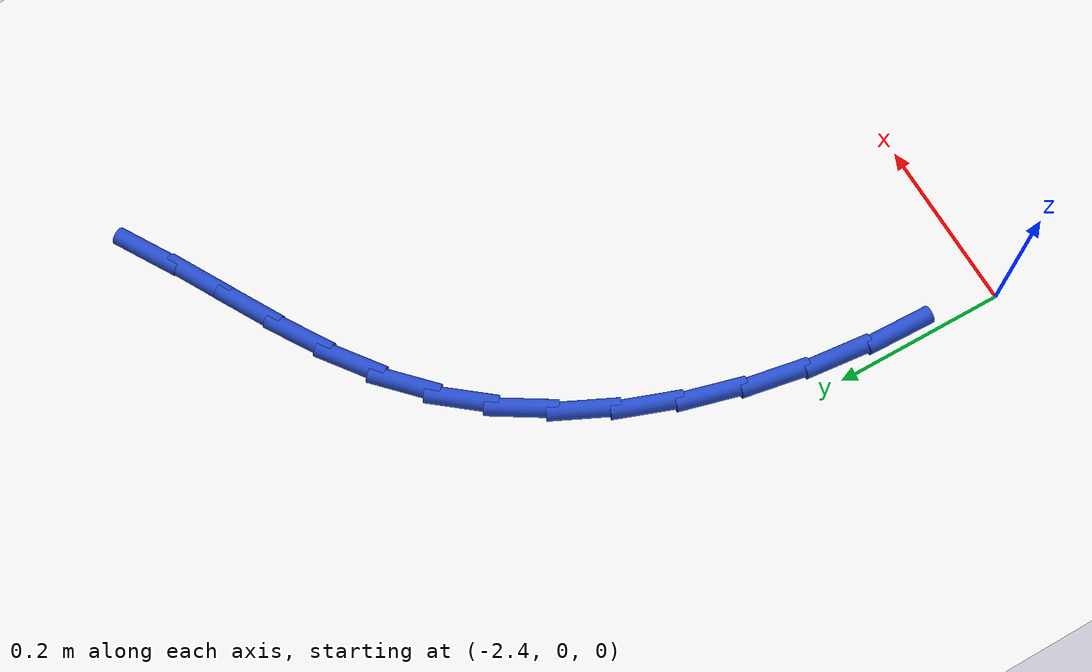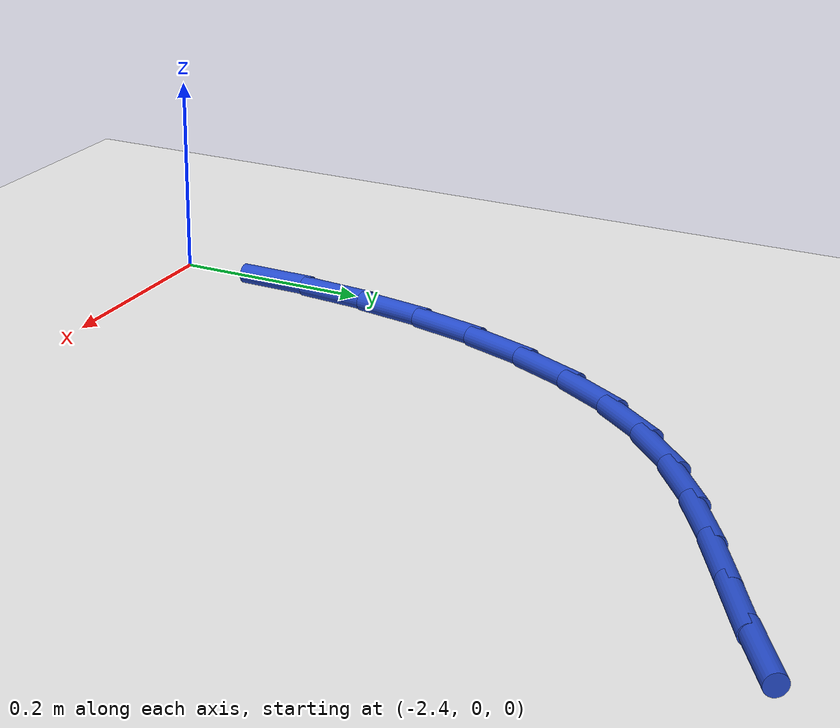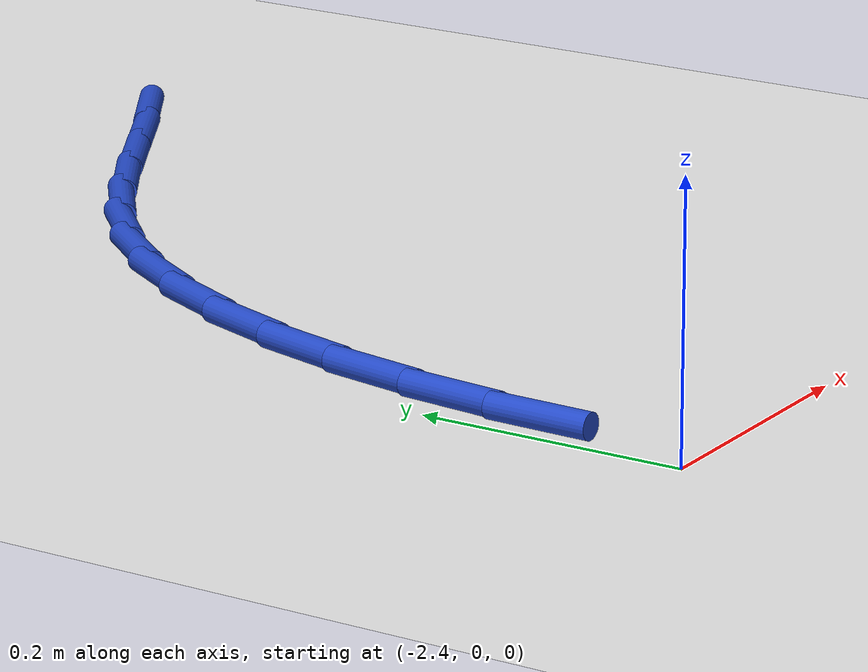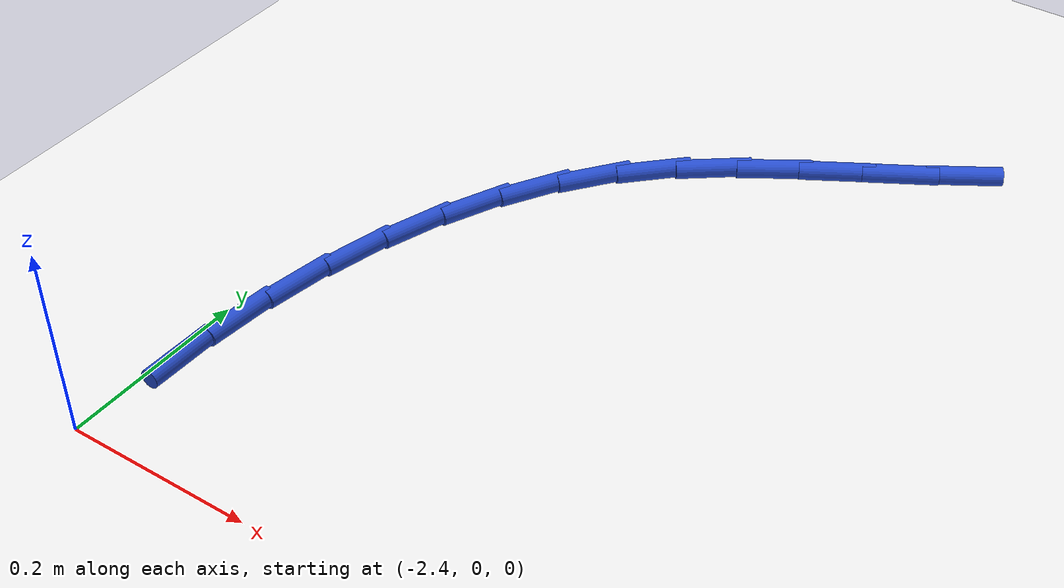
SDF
<sdf version="1.6">
 <world name="default">
  <model name="ground_plane">
   <static>1</static>
   <link name="link">
    <collision name="collision">
     <geometry><plane><normal>0 0 1</normal><size>100 100</size></plane></geometry>
     <surface><friction><ode><mu>100</mu><mu2>50</mu2></ode></friction></surface>
    </collision>
    <visual name="visual">
     <cast_shadows>0</cast_shadows>
     <geometry><plane><normal>0 0 1</normal><size>100 100</size></plane></geometry>
     <material>
      <script><uri>file://media/materials/scripts/gazebo.material</uri><name>Gazebo/WhiteGlow</name></script>
     </material>
    </visual>
   </link>
  </model>
  <model name="line">
   <link name="link_43">
    <pose>-1.9031417020735097 0.7855670885090802 0.01 0 1.57 0.5569310684670024</pose>
    <collision name="collision">
     <geometry><cylinder><radius>0.01</radius><length>0.08</length></cylinder></geometry>
    </collision>
    <visual name="visual">
     <material>
      <script><name>Gazebo/Blue</name><uri>file://media/materials/scripts/gazebo.material</uri></script>
     </material>
     <geometry><cylinder><radius>0.01</radius><length>0.08</length></cylinder></geometry>
    </visual>
   </link>
   <link name="link_44">
    <pose>-1.959454682631666 0.7505019805207742 0.01 0 1.57 0.5257596120730819</pose>
    <collision name="collision">
     <geometry><cylinder><radius>0.01</radius><length>0.08</length></cylinder></geometry>
    </collision>
    <visual name="visual">
     <material>
      <script><name>Gazebo/Blue</name><uri>file://media/materials/scripts/gazebo.material</uri></script>
     </material>
     <geometry><cylinder><radius>0.01</radius><length>0.08</length></cylinder></geometry>
    </visual>
   </link>
   <link name="link_45">
    <pose>-2.016389736166163 0.717466270425667 0.01 0 1.57 0.5312247149732872</pose>
    <collision name="collision">
     <geometry><cylinder><radius>0.01</radius><length>0.08</length></cylinder></geometry>
    </collision>
    <visual name="visual">
     <material>
      <script><name>Gazebo/Blue</name><uri>file://media/materials/scripts/gazebo.material</uri></script>
     </material>
     <geometry><cylinder><radius>0.01</radius><length>0.08</length></cylinder></geometry>
    </visual>
   </link>
   <link name="link_46">
    <pose>-2.072519929858301 0.6844862256214331 0.01 0 1.57 0.5746013298134934</pose>
    <collision name="collision">
     <geometry><cylinder><radius>0.01</radius><length>0.08</length></cylinder></geometry>
    </collision>
    <visual name="visual">
     <material>
      <script><name>Gazebo/Blue</name><uri>file://media/materials/scripts/gazebo.material</uri></script>
     </material>
     <geometry><cylinder><radius>0.01</radius><length>0.08</length></cylinder></geometry>
    </visual>
   </link>
   <link name="link_47">
    <pose>-2.1264183308893836 0.6495881135057482 0.01 0 1.57 0.6574939663490148</pose>
    <collision name="collision">
     <geometry><cylinder><radius>0.01</radius><length>0.08</length></cylinder></geometry>
    </collision>
    <visual name="visual">
     <material>
      <script><name>Gazebo/Blue</name><uri>file://media/materials/scripts/gazebo.material</uri></script>
     </material>
     <geometry><cylinder><radius>0.01</radius><length>0.08</length></cylinder></geometry>
    </visual>
   </link>
   <link name="link_48">
    <pose>-2.1766580064407113 0.6107982014762867 0.01 0 1.57 0.7785643827100246</pose>
    <collision name="collision">
     <geometry><cylinder><radius>0.01</radius><length>0.08</length></cylinder></geometry>
    </collision>
    <visual name="visual">
     <material>
      <script><name>Gazebo/Blue</name><uri>file://media/materials/scripts/gazebo.material</uri></script>
     </material>
     <geometry><cylinder><radius>0.01</radius><length>0.08</length></cylinder></geometry>
    </visual>
   </link>
   <link name="link_49">
    <pose>-2.2218528283493026 0.5662168994601674 0.01 0 1.57 0.910475314383533</pose>
    <collision name="collision">
     <geometry><cylinder><radius>0.01</radius><length>0.08</length></cylinder></geometry>
    </collision>
    <visual name="visual">
     <material>
      <script><name>Gazebo/Blue</name><uri>file://media/materials/scripts/gazebo.material</uri></script>
     </material>
     <geometry><cylinder><radius>0.01</radius><length>0.08</length></cylinder></geometry>
    </visual>
   </link>
   <link name="link_50">
    <pose>-2.2613764083141086 0.5153250734646552 0.01 0 1.57 1.030407609727738</pose>
    <collision name="collision">
     <geometry><cylinder><radius>0.01</radius><length>0.08</length></cylinder></geometry>
    </collision>
    <visual name="visual">
     <material>
      <script><name>Gazebo/Blue</name><uri>file://media/materials/scripts/gazebo.material</uri></script>
     </material>
     <geometry><cylinder><radius>0.01</radius><length>0.08</length></cylinder></geometry>
    </visual>
   </link>
   <link name="link_51">
    <pose>-2.295274337107057 0.45882458321276043 0.01 0 1.57 1.1381381666410684</pose>
    <collision name="collision">
     <geometry><cylinder><radius>0.01</radius><length>0.08</length></cylinder></geometry>
    </collision>
    <visual name="visual">
     <material>
      <script><name>Gazebo/Blue</name><uri>file://media/materials/scripts/gazebo.material</uri></script>
     </material>
     <geometry><cylinder><radius>0.01</radius><length>0.08</length></cylinder></geometry>
    </visual>
   </link>
   <link name="link_52">
    <pose>-2.3236153750526474 0.39745938777139433 0.01 0 1.57 1.2350356068884902</pose>
    <collision name="collision">
     <geometry><cylinder><radius>0.01</radius><length>0.08</length></cylinder></geometry>
    </collision>
    <visual name="visual">
     <material>
      <script><name>Gazebo/Blue</name><uri>file://media/materials/scripts/gazebo.material</uri></script>
     </material>
     <geometry><cylinder><radius>0.01</radius><length>0.08</length></cylinder></geometry>
    </visual>
   </link>
   <link name="link_53">
    <pose>-2.3464682824753806 0.33197344620746866 0.01 0 1.57 1.3228423684569701</pose>
    <collision name="collision">
     <geometry><cylinder><radius>0.01</radius><length>0.08</length></cylinder></geometry>
    </collision>
    <visual name="visual">
     <material>
      <script><name>Gazebo/Blue</name><uri>file://media/materials/scripts/gazebo.material</uri></script>
     </material>
     <geometry><cylinder><radius>0.01</radius><length>0.08</length></cylinder></geometry>
    </visual>
   </link>
   <link name="link_54">
    <pose>-2.3639018196997563 0.2631107175878946 0.01 0 1.57 1.4033758173127915</pose>
    <collision name="collision">
     <geometry><cylinder><radius>0.01</radius><length>0.08</length></cylinder></geometry>
    </collision>
    <visual name="visual">
     <material>
      <script><name>Gazebo/Blue</name><uri>file://media/materials/scripts/gazebo.material</uri></script>
     </material>
     <geometry><cylinder><radius>0.01</radius><length>0.08</length></cylinder></geometry>
    </visual>
   </link>
   <link name="link_55">
    <pose>-2.375984747050274 0.1916151609795838 0.01 0 1.57 1.4783829056423248</pose>
    <collision name="collision">
     <geometry><cylinder><radius>0.01</radius><length>0.08</length></cylinder></geometry>
    </collision>
    <visual name="visual">
     <material>
      <script><name>Gazebo/Blue</name><uri>file://media/materials/scripts/gazebo.material</uri></script>
     </material>
     <geometry><cylinder><radius>0.01</radius><length>0.08</length></cylinder></geometry>
    </visual>
   </link>
   <link name="link_56">
    <pose>-2.3827858248514335 0.11823073544944807 0.01 0 1.57 1.5494926572188232</pose>
    <collision name="collision">
     <geometry><cylinder><radius>0.01</radius><length>0.08</length></cylinder></geometry>
    </collision>
    <visual name="visual">
     <material>
      <script><name>Gazebo/Blue</name><uri>file://media/materials/scripts/gazebo.material</uri></script>
     </material>
     <geometry><cylinder><radius>0.01</radius><length>0.08</length></cylinder></geometry>
    </visual>
   </link>
  </model>
 </world>
</sdf>
